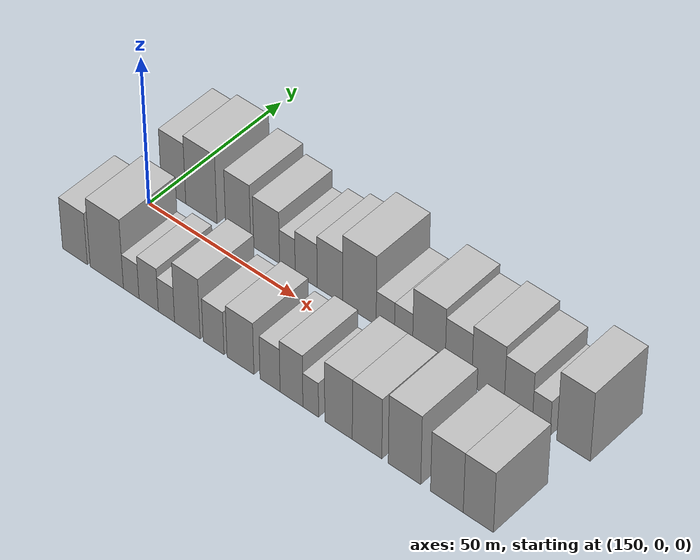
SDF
<sdf version="1.6">
 <world name="default">
  <model name="building_17">
   <static>1</static>
   <pose>152.8210 16.0000 0 0.000000 0.000000 1.570796</pose>
   <link name="link">
    <pose>0 0 10.50 0 0 0</pose>
    <collision name="collision"><geometry><box><size>20.0000 8.5329 21.0000</size></box></geometry></collision>
    <visual name="visual">
     <cast_shadows>0</cast_shadows>
     <geometry><box><size>20.0000 8.5329 21.0000</size></box></geometry>
     <material>
      <script>
       <uri>model://HANNAS_wall/materials/scripts</uri>
       <uri>model://HANNAS_wall/materials/textures</uri>
       <name>vrc/HANNAS_wall</name>
      </script>
     </material>
    </visual>
   </link>
  </model>
  <model name="building_18">
   <static>1</static>
   <pose>162.4938 16.0000 0 0.000000 0.000000 1.570796</pose>
   <link name="link">
    <pose>0 0 12.00 0 0 0</pose>
    <collision name="collision"><geometry><box><size>20.0000 10.8128 24.0000</size></box></geometry></collision>
    <visual name="visual">
     <cast_shadows>0</cast_shadows>
     <geometry><box><size>20.0000 10.8128 24.0000</size></box></geometry>
     <material>
      <script>
       <uri>model://HANNAS_wall/materials/scripts</uri>
       <uri>model://HANNAS_wall/materials/textures</uri>
       <name>vrc/HANNAS_wall</name>
      </script>
     </material>
    </visual>
   </link>
  </model>
  <model name="building_19">
   <static>1</static>
   <pose>175.1848 16.0000 0 0.000000 0.000000 1.570796</pose>
   <link name="link">
    <pose>0 0 10.50 0 0 0</pose>
    <collision name="collision"><geometry><box><size>20.0000 8.5691 21.0000</size></box></geometry></collision>
    <visual name="visual">
     <cast_shadows>0</cast_shadows>
     <geometry><box><size>20.0000 8.5691 21.0000</size></box></geometry>
     <material>
      <script>
       <uri>model://HANNAS_wall/materials/scripts</uri>
       <uri>model://HANNAS_wall/materials/textures</uri>
       <name>vrc/HANNAS_wall</name>
      </script>
     </material>
    </visual>
   </link>
  </model>
  <model name="building_20">
   <static>1</static>
   <pose>184.8480 16.0000 0 0.000000 0.000000 1.570796</pose>
   <link name="link">
    <pose>0 0 9.00 0 0 0</pose>
    <collision name="collision"><geometry><box><size>20.0000 8.7574 18.0000</size></box></geometry></collision>
    <visual name="visual">
     <cast_shadows>0</cast_shadows>
     <geometry><box><size>20.0000 8.7574 18.0000</size></box></geometry>
     <material>
      <script>
       <uri>model://HANNAS_wall/materials/scripts</uri>
       <uri>model://HANNAS_wall/materials/textures</uri>
       <name>vrc/HANNAS_wall</name>
      </script>
     </material>
    </visual>
   </link>
  </model>
  <model name="building_21">
   <static>1</static>
   <pose>191.8407 16.0000 0 0.000000 0.000000 1.570796</pose>
   <link name="link">
    <pose>0 0 6.00 0 0 0</pose>
    <collision name="collision"><geometry><box><size>20.0000 5.2279 12.0000</size></box></geometry></collision>
    <visual name="visual">
     <cast_shadows>0</cast_shadows>
     <geometry><box><size>20.0000 5.2279 12.0000</size></box></geometry>
     <material>
      <script>
       <uri>model://HANNAS_wall/materials/scripts</uri>
       <uri>model://HANNAS_wall/materials/textures</uri>
       <name>vrc/HANNAS_wall</name>
      </script>
     </material>
    </visual>
   </link>
  </model>
  <model name="building_22">
   <static>1</static>
   <pose>198.1229 16.0000 0 0.000000 0.000000 1.570796</pose>
   <link name="link">
    <pose>0 0 7.50 0 0 0</pose>
    <collision name="collision"><geometry><box><size>20.0000 7.3365 15.0000</size></box></geometry></collision>
    <visual name="visual">
     <cast_shadows>0</cast_shadows>
     <geometry><box><size>20.0000 7.3365 15.0000</size></box></geometry>
     <material>
      <script>
       <uri>model://HANNAS_wall/materials/scripts</uri>
       <uri>model://HANNAS_wall/materials/textures</uri>
       <name>vrc/HANNAS_wall</name>
      </script>
     </material>
    </visual>
   </link>
  </model>
  <model name="building_23">
   <static>1</static>
   <pose>205.9871 16.0000 0 0.000000 0.000000 1.570796</pose>
   <link name="link">
    <pose>0 0 9.00 0 0 0</pose>
    <collision name="collision"><geometry><box><size>20.0000 8.3920 18.0000</size></box></geometry></collision>
    <visual name="visual">
     <cast_shadows>0</cast_shadows>
     <geometry><box><size>20.0000 8.3920 18.0000</size></box></geometry>
     <material>
      <script>
       <uri>model://HANNAS_wall/materials/scripts</uri>
       <uri>model://HANNAS_wall/materials/textures</uri>
       <name>vrc/HANNAS_wall</name>
      </script>
     </material>
    </visual>
   </link>
  </model>
  <model name="building_24">
   <static>1</static>
   <pose>215.6854 16.0000 0 0.000000 0.000000 1.570796</pose>
   <link name="link">
    <pose>0 0 12.00 0 0 0</pose>
    <collision name="collision"><geometry><box><size>20.0000 11.0047 24.0000</size></box></geometry></collision>
    <visual name="visual">
     <cast_shadows>0</cast_shadows>
     <geometry><box><size>20.0000 11.0047 24.0000</size></box></geometry>
     <material>
      <script>
       <uri>model://HANNAS_wall/materials/scripts</uri>
       <uri>model://HANNAS_wall/materials/textures</uri>
       <name>vrc/HANNAS_wall</name>
      </script>
     </material>
    </visual>
   </link>
  </model>
  <model name="building_25">
   <static>1</static>
   <pose>224.1522 16.0000 0 0.000000 0.000000 1.570796</pose>
   <link name="link">
    <pose>0 0 6.00 0 0 0</pose>
    <collision name="collision"><geometry><box><size>20.0000 5.9289 12.0000</size></box></geometry></collision>
    <visual name="visual">
     <cast_shadows>0</cast_shadows>
     <geometry><box><size>20.0000 5.9289 12.0000</size></box></geometry>
     <material>
      <script>
       <uri>model://HANNAS_wall/materials/scripts</uri>
       <uri>model://HANNAS_wall/materials/textures</uri>
       <name>vrc/HANNAS_wall</name>
      </script>
     </material>
    </visual>
   </link>
  </model>
  <model name="building_26">
   <static>1</static>
   <pose>230.0403 16.0000 0 0.000000 0.000000 1.570796</pose>
   <link name="link">
    <pose>0 0 6.00 0 0 0</pose>
    <collision name="collision"><geometry><box><size>20.0000 5.8472 12.0000</size></box></geometry></collision>
    <visual name="visual">
     <cast_shadows>0</cast_shadows>
     <geometry><box><size>20.0000 5.8472 12.0000</size></box></geometry>
     <material>
      <script>
       <uri>model://HANNAS_wall/materials/scripts</uri>
       <uri>model://HANNAS_wall/materials/textures</uri>
       <name>vrc/HANNAS_wall</name>
      </script>
     </material>
    </visual>
   </link>
  </model>
  <model name="building_27">
   <static>1</static>
   <pose>238.1439 16.0000 0 0.000000 0.000000 1.570796</pose>
   <link name="link">
    <pose>0 0 10.50 0 0 0</pose>
    <collision name="collision"><geometry><box><size>20.0000 10.3602 21.0000</size></box></geometry></collision>
    <visual name="visual">
     <cast_shadows>0</cast_shadows>
     <geometry><box><size>20.0000 10.3602 21.0000</size></box></geometry>
     <material>
      <script>
       <uri>model://HANNAS_wall/materials/scripts</uri>
       <uri>model://HANNAS_wall/materials/textures</uri>
       <name>vrc/HANNAS_wall</name>
      </script>
     </material>
    </visual>
   </link>
  </model>
  <model name="building_28">
   <static>1</static>
   <pose>247.5229 16.0000 0 0.000000 0.000000 1.570796</pose>
   <link name="link">
    <pose>0 0 9.00 0 0 0</pose>
    <collision name="collision"><geometry><box><size>20.0000 8.3978 18.0000</size></box></geometry></collision>
    <visual name="visual">
     <cast_shadows>0</cast_shadows>
     <geometry><box><size>20.0000 8.3978 18.0000</size></box></geometry>
     <material>
      <script>
       <uri>model://HANNAS_wall/materials/scripts</uri>
       <uri>model://HANNAS_wall/materials/textures</uri>
       <name>vrc/HANNAS_wall</name>
      </script>
     </material>
    </visual>
   </link>
  </model>
  <model name="building_29">
   <static>1</static>
   <pose>256.8041 16.0000 0 0.000000 0.000000 1.570796</pose>
   <link name="link">
    <pose>0 0 10.50 0 0 0</pose>
    <collision name="collision"><geometry><box><size>20.0000 10.1645 21.0000</size></box></geometry></collision>
    <visual name="visual">
     <cast_shadows>0</cast_shadows>
     <geometry><box><size>20.0000 10.1645 21.0000</size></box></geometry>
     <material>
      <script>
       <uri>model://HANNAS_wall/materials/scripts</uri>
       <uri>model://HANNAS_wall/materials/textures</uri>
       <name>vrc/HANNAS_wall</name>
      </script>
     </material>
    </visual>
   </link>
  </model>
  <model name="building_30">
   <static>1</static>
   <pose>266.2497 16.0000 0 0.000000 0.000000 1.570796</pose>
   <link name="link">
    <pose>0 0 9.00 0 0 0</pose>
    <collision name="collision"><geometry><box><size>20.0000 8.7268 18.0000</size></box></geometry></collision>
    <visual name="visual">
     <cast_shadows>0</cast_shadows>
     <geometry><box><size>20.0000 8.7268 18.0000</size></box></geometry>
     <material>
      <script>
       <uri>model://HANNAS_wall/materials/scripts</uri>
       <uri>model://HANNAS_wall/materials/textures</uri>
       <name>vrc/HANNAS_wall</name>
      </script>
     </material>
    </visual>
   </link>
  </model>
  <model name="building_31">
   <static>1</static>
   <pose>273.3557 16.0000 0 0.000000 0.000000 1.570796</pose>
   <link name="link">
    <pose>0 0 6.00 0 0 0</pose>
    <collision name="collision"><geometry><box><size>20.0000 5.4852 12.0000</size></box></geometry></collision>
    <visual name="visual">
     <cast_shadows>0</cast_shadows>
     <geometry><box><size>20.0000 5.4852 12.0000</size></box></geometry>
     <material>
      <script>
       <uri>model://HANNAS_wall/materials/scripts</uri>
       <uri>model://HANNAS_wall/materials/textures</uri>
       <name>vrc/HANNAS_wall</name>
      </script>
     </material>
    </visual>
   </link>
  </model>
  <model name="building_32">
   <static>1</static>
   <pose>283.2170 16.0000 0 0.000000 0.000000 1.570796</pose>
   <link name="link">
    <pose>0 0 12.00 0 0 0</pose>
    <collision name="collision"><geometry><box><size>20.0000 10.2374 24.0000</size></box></geometry></collision>
    <visual name="visual">
     <cast_shadows>0</cast_shadows>
     <geometry><box><size>20.0000 10.2374 24.0000</size></box></geometry>
     <material>
      <script>
       <uri>model://HANNAS_wall/materials/scripts</uri>
       <uri>model://HANNAS_wall/materials/textures</uri>
       <name>vrc/HANNAS_wall</name>
      </script>
     </material>
    </visual>
   </link>
  </model>
  <model name="building_47">
   <static>1</static>
   <pose>149.0184 -16.0000 0 0.000000 0.000000 1.570796</pose>
   <link name="link">
    <pose>0 0 9.00 0 0 0</pose>
    <collision name="collision"><geometry><box><size>20.0000 8.6738 18.0000</size></box></geometry></collision>
    <visual name="visual">
     <cast_shadows>0</cast_shadows>
     <geometry><box><size>20.0000 8.6738 18.0000</size></box></geometry>
     <material>
      <script>
       <uri>model://HANNAS_wall/materials/scripts</uri>
       <uri>model://HANNAS_wall/materials/textures</uri>
       <name>vrc/HANNAS_wall</name>
      </script>
     </material>
    </visual>
   </link>
  </model>
  <model name="building_48">
   <static>1</static>
   <pose>160.1020 -16.0000 0 0.000000 0.000000 1.570796</pose>
   <link name="link">
    <pose>0 0 12.00 0 0 0</pose>
    <collision name="collision"><geometry><box><size>20.0000 11.4935 24.0000</size></box></geometry></collision>
    <visual name="visual">
     <cast_shadows>0</cast_shadows>
     <geometry><box><size>20.0000 11.4935 24.0000</size></box></geometry>
     <material>
      <script>
       <uri>model://HANNAS_wall/materials/scripts</uri>
       <uri>model://HANNAS_wall/materials/textures</uri>
       <name>vrc/HANNAS_wall</name>
      </script>
     </material>
    </visual>
   </link>
  </model>
  <model name="building_49">
   <static>1</static>
   <pose>168.5266 -16.0000 0 0.000000 0.000000 1.570796</pose>
   <link name="link">
    <pose>0 0 6.00 0 0 0</pose>
    <collision name="collision"><geometry><box><size>20.0000 5.3558 12.0000</size></box></geometry></collision>
    <visual name="visual">
     <cast_shadows>0</cast_shadows>
     <geometry><box><size>20.0000 5.3558 12.0000</size></box></geometry>
     <material>
      <script>
       <uri>model://HANNAS_wall/materials/scripts</uri>
       <uri>model://HANNAS_wall/materials/textures</uri>
       <name>vrc/HANNAS_wall</name>
      </script>
     </material>
    </visual>
   </link>
  </model>
  <model name="building_50">
   <static>1</static>
   <pose>174.4932 -16.0000 0 0.000000 0.000000 1.570796</pose>
   <link name="link">
    <pose>0 0 7.50 0 0 0</pose>
    <collision name="collision"><geometry><box><size>20.0000 6.5775 15.0000</size></box></geometry></collision>
    <visual name="visual">
     <cast_shadows>0</cast_shadows>
     <geometry><box><size>20.0000 6.5775 15.0000</size></box></geometry>
     <material>
      <script>
       <uri>model://HANNAS_wall/materials/scripts</uri>
       <uri>model://HANNAS_wall/materials/textures</uri>
       <name>vrc/HANNAS_wall</name>
      </script>
     </material>
    </visual>
   </link>
  </model>
  <model name="building_51">
   <static>1</static>
   <pose>180.5383 -16.0000 0 0.000000 0.000000 1.570796</pose>
   <link name="link">
    <pose>0 0 6.00 0 0 0</pose>
    <collision name="collision"><geometry><box><size>20.0000 5.5127 12.0000</size></box></geometry></collision>
    <visual name="visual">
     <cast_shadows>0</cast_shadows>
     <geometry><box><size>20.0000 5.5127 12.0000</size></box></geometry>
     <material>
      <script>
       <uri>model://HANNAS_wall/materials/scripts</uri>
       <uri>model://HANNAS_wall/materials/textures</uri>
       <name>vrc/HANNAS_wall</name>
      </script>
     </material>
    </visual>
   </link>
  </model>
  <model name="building_52">
   <static>1</static>
   <pose>187.6000 -16.0000 0 0.000000 0.000000 1.570796</pose>
   <link name="link">
    <pose>0 0 10.50 0 0 0</pose>
    <collision name="collision"><geometry><box><size>20.0000 8.6107 21.0000</size></box></geometry></collision>
    <visual name="visual">
     <cast_shadows>0</cast_shadows>
     <geometry><box><size>20.0000 8.6107 21.0000</size></box></geometry>
     <material>
      <script>
       <uri>model://HANNAS_wall/materials/scripts</uri>
       <uri>model://HANNAS_wall/materials/textures</uri>
       <name>vrc/HANNAS_wall</name>
      </script>
     </material>
    </visual>
   </link>
  </model>
  <model name="building_53">
   <static>1</static>
   <pose>196.3799 -16.0000 0 0.000000 0.000000 1.570796</pose>
   <link name="link">
    <pose>0 0 7.50 0 0 0</pose>
    <collision name="collision"><geometry><box><size>20.0000 6.9492 15.0000</size></box></geometry></collision>
    <visual name="visual">
     <cast_shadows>0</cast_shadows>
     <geometry><box><size>20.0000 6.9492 15.0000</size></box></geometry>
     <material>
      <script>
       <uri>model://HANNAS_wall/materials/scripts</uri>
       <uri>model://HANNAS_wall/materials/textures</uri>
       <name>vrc/HANNAS_wall</name>
      </script>
     </material>
    </visual>
   </link>
  </model>
  <model name="building_54">
   <static>1</static>
   <pose>205.2830 -16.0000 0 0.000000 0.000000 1.570796</pose>
   <link name="link">
    <pose>0 0 9.00 0 0 0</pose>
    <collision name="collision"><geometry><box><size>20.0000 8.8570 18.0000</size></box></geometry></collision>
    <visual name="visual">
     <cast_shadows>0</cast_shadows>
     <geometry><box><size>20.0000 8.8570 18.0000</size></box></geometry>
     <material>
      <script>
       <uri>model://HANNAS_wall/materials/scripts</uri>
       <uri>model://HANNAS_wall/materials/textures</uri>
       <name>vrc/HANNAS_wall</name>
      </script>
     </material>
    </visual>
   </link>
  </model>
  <model name="building_55">
   <static>1</static>
   <pose>214.9843 -16.0000 0 0.000000 0.000000 1.570796</pose>
   <link name="link">
    <pose>0 0 7.50 0 0 0</pose>
    <collision name="collision"><geometry><box><size>20.0000 6.5457 15.0000</size></box></geometry></collision>
    <visual name="visual">
     <cast_shadows>0</cast_shadows>
     <geometry><box><size>20.0000 6.5457 15.0000</size></box></geometry>
     <material>
      <script>
       <uri>model://HANNAS_wall/materials/scripts</uri>
       <uri>model://HANNAS_wall/materials/textures</uri>
       <name>vrc/HANNAS_wall</name>
      </script>
     </material>
    </visual>
   </link>
  </model>
  <model name="building_56">
   <static>1</static>
   <pose>221.9484 -16.0000 0 0.000000 0.000000 1.570796</pose>
   <link name="link">
    <pose>0 0 9.00 0 0 0</pose>
    <collision name="collision"><geometry><box><size>20.0000 7.3825 18.0000</size></box></geometry></collision>
    <visual name="visual">
     <cast_shadows>0</cast_shadows>
     <geometry><box><size>20.0000 7.3825 18.0000</size></box></geometry>
     <material>
      <script>
       <uri>model://HANNAS_wall/materials/scripts</uri>
       <uri>model://HANNAS_wall/materials/textures</uri>
       <name>vrc/HANNAS_wall</name>
      </script>
     </material>
    </visual>
   </link>
  </model>
  <model name="building_57">
   <static>1</static>
   <pose>228.1563 -16.0000 0 0.000000 0.000000 1.570796</pose>
   <link name="link">
    <pose>0 0 6.00 0 0 0</pose>
    <collision name="collision"><geometry><box><size>20.0000 5.0333 12.0000</size></box></geometry></collision>
    <visual name="visual">
     <cast_shadows>0</cast_shadows>
     <geometry><box><size>20.0000 5.0333 12.0000</size></box></geometry>
     <material>
      <script>
       <uri>model://HANNAS_wall/materials/scripts</uri>
       <uri>model://HANNAS_wall/materials/textures</uri>
       <name>vrc/HANNAS_wall</name>
      </script>
     </material>
    </visual>
   </link>
  </model>
  <model name="building_58">
   <static>1</static>
   <pose>237.0471 -16.0000 0 0.000000 0.000000 1.570796</pose>
   <link name="link">
    <pose>0 0 10.50 0 0 0</pose>
    <collision name="collision"><geometry><box><size>20.0000 8.7481 21.0000</size></box></geometry></collision>
    <visual name="visual">
     <cast_shadows>0</cast_shadows>
     <geometry><box><size>20.0000 8.7481 21.0000</size></box></geometry>
     <material>
      <script>
       <uri>model://HANNAS_wall/materials/scripts</uri>
       <uri>model://HANNAS_wall/materials/textures</uri>
       <name>vrc/HANNAS_wall</name>
      </script>
     </material>
    </visual>
   </link>
  </model>
  <model name="building_59">
   <static>1</static>
   <pose>246.0774 -16.0000 0 0.000000 0.000000 1.570796</pose>
   <link name="link">
    <pose>0 0 10.50 0 0 0</pose>
    <collision name="collision"><geometry><box><size>20.0000 9.3124 21.0000</size></box></geometry></collision>
    <visual name="visual">
     <cast_shadows>0</cast_shadows>
     <geometry><box><size>20.0000 9.3124 21.0000</size></box></geometry>
     <material>
      <script>
       <uri>model://HANNAS_wall/materials/scripts</uri>
       <uri>model://HANNAS_wall/materials/textures</uri>
       <name>vrc/HANNAS_wall</name>
      </script>
     </material>
    </visual>
   </link>
  </model>
  <model name="building_60">
   <static>1</static>
   <pose>257.7813 -16.0000 0 0.000000 0.000000 1.570796</pose>
   <link name="link">
    <pose>0 0 12.00 0 0 0</pose>
    <collision name="collision"><geometry><box><size>20.0000 10.0954 24.0000</size></box></geometry></collision>
    <visual name="visual">
     <cast_shadows>0</cast_shadows>
     <geometry><box><size>20.0000 10.0954 24.0000</size></box></geometry>
     <material>
      <script>
       <uri>model://HANNAS_wall/materials/scripts</uri>
       <uri>model://HANNAS_wall/materials/textures</uri>
       <name>vrc/HANNAS_wall</name>
      </script>
     </material>
    </visual>
   </link>
  </model>
  <model name="building_61">
   <static>1</static>
   <pose>270.8501 -16.0000 0 0.000000 0.000000 1.570796</pose>
   <link name="link">
    <pose>0 0 10.50 0 0 0</pose>
    <collision name="collision"><geometry><box><size>20.0000 10.0423 21.0000</size></box></geometry></collision>
    <visual name="visual">
     <cast_shadows>0</cast_shadows>
     <geometry><box><size>20.0000 10.0423 21.0000</size></box></geometry>
     <material>
      <script>
       <uri>model://HANNAS_wall/materials/scripts</uri>
       <uri>model://HANNAS_wall/materials/textures</uri>
       <name>vrc/HANNAS_wall</name>
      </script>
     </material>
    </visual>
   </link>
  </model>
  <model name="building_62">
   <static>1</static>
   <pose>280.4488 -16.0000 0 0.000000 0.000000 1.570796</pose>
   <link name="link">
    <pose>0 0 10.50 0 0 0</pose>
    <collision name="collision"><geometry><box><size>20.0000 9.1551 21.0000</size></box></geometry></collision>
    <visual name="visual">
     <cast_shadows>0</cast_shadows>
     <geometry><box><size>20.0000 9.1551 21.0000</size></box></geometry>
     <material>
      <script>
       <uri>model://HANNAS_wall/materials/scripts</uri>
       <uri>model://HANNAS_wall/materials/textures</uri>
       <name>vrc/HANNAS_wall</name>
      </script>
     </material>
    </visual>
   </link>
  </model>
 </world>
</sdf>
